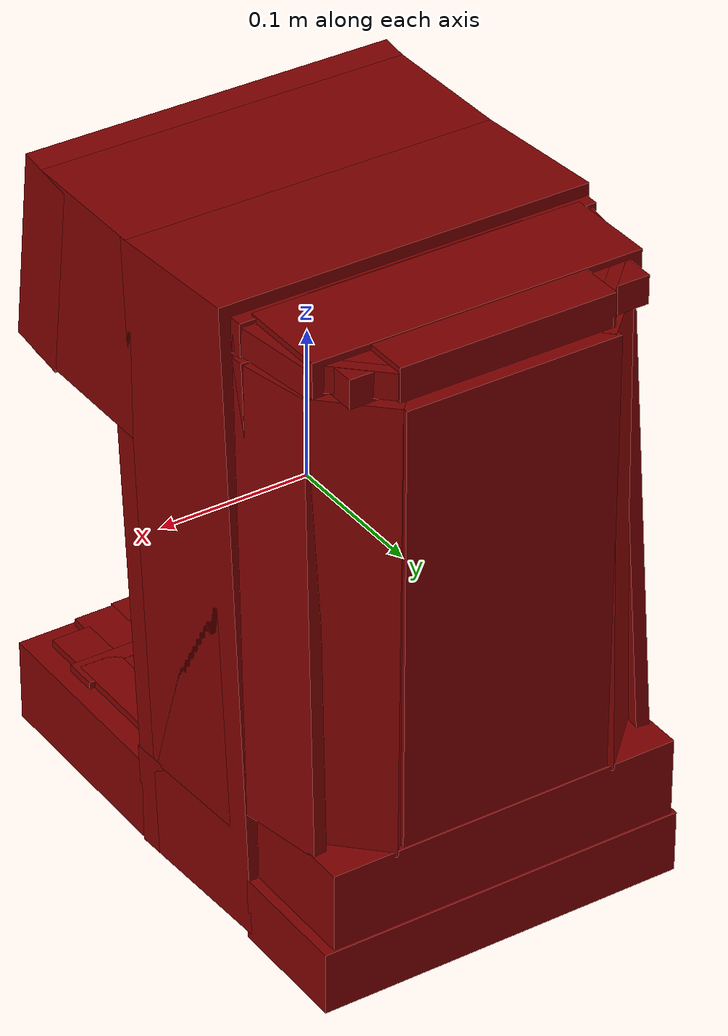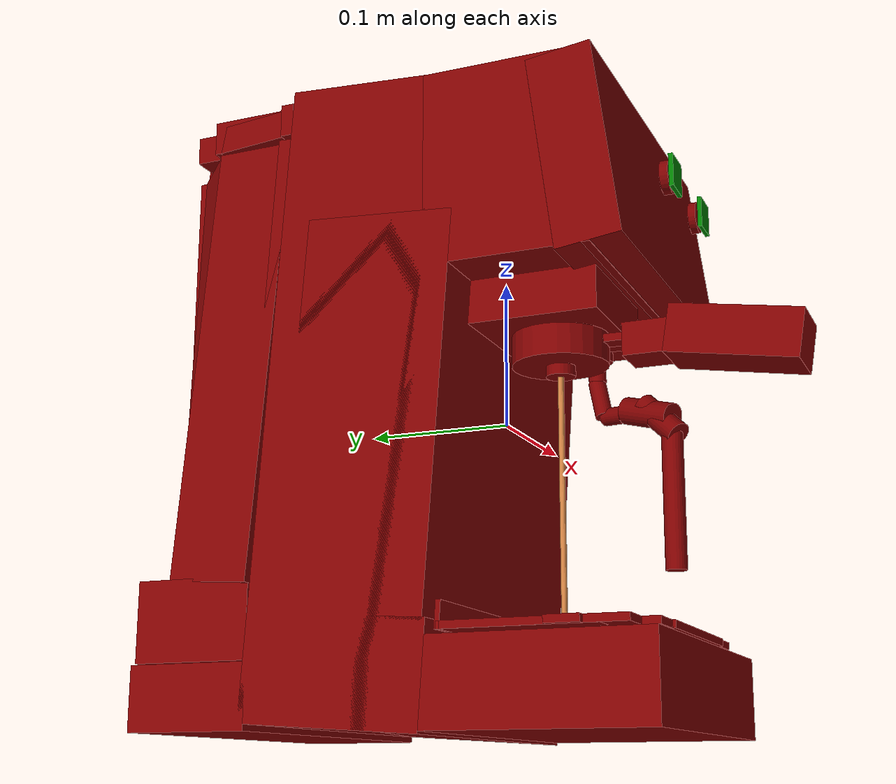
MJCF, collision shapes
<?xml version='1.0' encoding='UTF-8'?>
<mujoco model="model">
  <compiler angle="radian"/>
  <asset>
    <mesh file="visuals/Body001.obj" name="Body001_vis"/>
    <mesh file="visuals/Button001.obj" name="Button001_vis"/>
    <mesh file="visuals/Button002.obj" name="Button002_vis"/>
    <mesh file="visuals/Container001_Clear.obj" name="Container001_Clear_vis"/>
    <mesh file="visuals/Lever001.obj" name="Lever001_vis"/>
    <mesh file="visuals/Lever002.obj" name="Lever002_vis"/>
    <mesh file="visuals/Lid001.obj" name="Lid001_vis"/>
    <mesh file="visuals/Lid002_Clear.obj" name="Lid002_Clear_vis"/>
    <texture file="visuals/T_BC001.png" name="Body001_material" type="2d"/>
    <material name="Body001_material" rgba="1 1 1 1.0" texture="Body001_material" shininess="0.4472135901451111" specular="0.3103448502657381"/>
    <texture file="visuals/T_BC001.png" name="Button001_material" type="2d"/>
    <material name="Button001_material" rgba="1 1 1 1.0" texture="Button001_material" shininess="0.4472135901451111" specular="0.3103448502657381"/>
    <texture file="visuals/T_BC001.png" name="Button002_material" type="2d"/>
    <material name="Button002_material" rgba="1 1 1 1.0" texture="Button002_material" shininess="0.4472135901451111" specular="0.3103448502657381"/>
    <texture file="visuals/T_BC001.png" name="Container001_Clear_material" type="2d"/>
    <material name="Container001_Clear_material" rgba="1 1 1 0.13247865438461304" texture="Container001_Clear_material" shininess="0.4472135901451111" specular="0.3103448502657381"/>
    <texture file="visuals/T_BC001.png" name="Lid002_Clear_material" type="2d"/>
    <material name="Lid002_Clear_material" rgba="1 1 1 0.13247865438461304" texture="Lid002_Clear_material" shininess="0.4472135901451111" specular="0.3103448502657381"/>
    <texture file="visuals/T_BC001.png" name="Lever001_material" type="2d"/>
    <material name="Lever001_material" rgba="1 1 1 1.0" texture="Lever001_material" shininess="0.4472135901451111" specular="0.3103448502657381"/>
    <texture file="visuals/T_BC001.png" name="Lever002_material" type="2d"/>
    <material name="Lever002_material" rgba="1 1 1 1.0" texture="Lever002_material" shininess="0.4472135901451111" specular="0.3103448502657381"/>
    <texture file="visuals/T_BC001.png" name="Lid001_material" type="2d"/>
    <material name="Lid001_material" rgba="1 1 1 1.0" texture="Lid001_material" shininess="0.4472135901451111" specular="0.3103448502657381"/>
  </asset>
  <default>
    <default class="visual">
      <geom conaffinity="0" contype="0" group="1" type="mesh"/>
    </default>
    <default class="collision">
      <geom group="0" rgba="0.5 0 0 0.5"/>
    </default>
    <default class="spawn">
      <geom group="0" rgba="1 1 1 0.5" contype="0" conaffinity="0"/>
      <site group="0" rgba="1 1 1 0.5"/>
    </default>
    <default class="region">
      <geom group="1" conaffinity="0" contype="0" rgba="0 1 0 0"/>
    </default>
  </default>
  <worldbody>
    <body>
      <body name="object">
        <geom class="collision" type="box" pos="-0.037887778133153915 -0.13149195909500122 0.14521107077598572" size="0.011056236922740936 0.011056238785386086 0.0014997016405686736" quat="0.7071067094802856 0.7071068286895752 0.0 0.0" name="start_button_1" rgba="0.0 0.5 0 0.5"/>
        <geom class="collision" type="box" pos="0.03765728324651718 -0.1315450668334961 0.14554733037948608" size="0.010777225717902184 0.010777226649224758 0.001362221664749086" quat="0.7071067094802856 0.7071068286895752 0.0 0.0" name="start_button_2" rgba="0.0 0.5 0 0.5"/>
        <site type="cylinder" rgba="0.8 0.5 0.25 1" size="0.001991123892366886 0.09143907576799393" pos="-0.03728548437356949 -0.051361002027988434 -0.06694786250591278" name="coffee_liquid"/>
        <site rgba="0 0 0 0" size="0.009999999776482582 0.009999999776482582" pos="-0.03728548437356949 -0.051361002027988434 -0.1354365348815918" name="receptacle_place_site"/>
        <geom mesh="Body001_vis" type="mesh" solimp="0.998 0.998 0.001" solref="0.001 1" density="100" friction="0.95 0.3 0.1" class="visual" material="Body001_material"/>
        <geom class="collision" type="box" pos="0.0005879322998225689 0.16713333129882812 -0.1845313310623169" size="0.12188521027565002 0.04132832959294319 0.020840879529714584" quat="1.0 0.0 0.0 0.0"/>
        <geom class="collision" type="box" pos="0.0005879322998225689 -0.061979882419109344 -0.17946156859397888" size="0.12188521027565002 0.0717216357588768 0.02756747230887413" quat="1.0 0.0 0.0 0.0"/>
        <geom class="collision" type="box" pos="0.0005879322998225689 -0.04462757706642151 0.1394951045513153" size="0.12188521027565002 0.054369330406188965 0.06431352347135544" quat="1.0 0.0 0.0 0.0"/>
        <geom class="collision" type="box" pos="0.0005879322998225689 -0.08910470455884933 0.1394951045513153" size="0.12188521027565002 0.02129788137972355 0.06431352347135544" quat="0.9977379441261292 -0.06722323596477509 1.492656018030309e-17 4.508696539859629e-25"/>
        <geom class="collision" type="box" pos="-0.037271272391080856 -0.040505655109882355 0.062302615493535995" size="0.04665796831250191 0.05024740844964981 0.015589541755616665" quat="1.0 0.0 0.0 0.0"/>
        <geom class="collision" type="box" pos="0.0005879322998225689 0.06555070728063583 0.0012318050721660256" size="0.12188521027565002 0.051172152161598206 0.20599928498268127" quat="0.9994761943817139 0.03236301243305206 -8.963143829167396e-18 6.466591713618984e-20"/>
        <geom class="collision" type="box" pos="0.0005879322998225689 0.05872242897748947 -0.1721765100955963" size="0.12188521027565002 0.05086646229028702 0.033395931124687195" quat="0.9994761943817139 0.03236301243305206 -8.963143829167396e-18 6.466591713618984e-20"/>
        <geom class="collision" type="box" pos="0.0005879322998225689 0.0489005409181118 -0.0131535604596138" size="0.12188521027565002 0.05004939064383507 0.1273946911096573" quat="0.999369740486145 0.03549849987030029 -9.659572002294167e-18 5.90912949566021e-20"/>
        <body name="Button001">
          <joint axis="0.0 1.0 0.0" pos="-0.03684584051370621 -0.12909454107284546 0.14541707932949066" limited="true" name="Button001_joint" range="0.0 0.003" type="slide" damping="1" frictionloss="1" armature=".01" stiffness="0.05"/>
          <geom mesh="Button001_vis" type="mesh" solimp="0.998 0.998 0.001" solref="0.001 1" density="100" friction="0.95 0.3 0.1" class="visual" material="Button001_material"/>
          <geom class="collision" type="cylinder" pos="-0.03707227483391762 -0.12606224417686462 0.1450919508934021" size="0.011056236922740936 0.0028418099973350763" quat="0.7071067094802856 0.7071068286895752 0.0 0.0"/>
        </body>
        <body name="Button002">
          <joint axis="0.0 1.0 0.0" pos="0.037382572889328 -0.12909454107284546 0.14541707932949066" limited="true" name="Button002_joint" range="0.0 0.003" type="slide" damping="1" frictionloss="1" armature=".01" stiffness="0.05"/>
          <geom mesh="Button002_vis" type="mesh" solimp="0.998 0.998 0.001" solref="0.001 1" density="100" friction="0.95 0.3 0.1" class="visual" material="Button002_material"/>
          <geom class="collision" type="cylinder" pos="0.037992894649505615 -0.1255909502506256 0.14551380276679993" size="0.010777225717902184 0.002586835063993931" quat="0.7071067094802856 0.7071068286895752 0.0 0.0"/>
        </body>
        <body name="Container001_Clear">
          <joint axis="0.0 2.0663208033511182e-07 1.0" pos="-1.8635765286489914e-07 0.15773698687553406 0.010160783305764198" limited="true" name="Container001_Clear_joint" range="0.0 0.05" type="slide" damping="1" frictionloss="1" armature=".01" stiffness="0.05"/>
          <geom mesh="Container001_Clear_vis" type="mesh" solimp="0.998 0.998 0.001" solref="0.001 1" density="100" friction="0.95 0.3 0.1" class="visual" material="Container001_Clear_material"/>
          <geom class="collision" type="box" pos="-0.0006004249444231391 0.1678837239742279 -0.1365441083908081" size="0.11710385978221893 0.039931368082761765 0.026088230311870575" quat="1.0 0.0 0.0 0.0"/>
          <geom class="collision" type="box" pos="-0.0006004249444231391 0.12045846879482269 0.0331772118806839" size="0.11710385978221893 0.00440641725435853 0.14647434651851654" quat="0.9995599985122681 0.02966165915131569 -6.586211801265138e-18 2.6615360824919416e-25"/>
          <geom class="collision" type="box" pos="-0.0013509514974430203 0.1983240842819214 0.03387085348367691" size="0.07032100111246109 0.007846659980714321 0.14723441004753113" quat="1.0 0.0 0.0 0.0"/>
          <geom class="collision" type="box" pos="-0.08808834850788116 0.1843516230583191 0.03374398872256279" size="0.02727334201335907 0.004406421445310116 0.1474907100200653" quat="0.9258682131767273 0.01082668174058199 0.004416247364133596 0.37766557931900024"/>
          <geom class="collision" type="box" pos="-0.11131235957145691 0.14657989144325256 0.032974448055028915" size="0.029937107115983963 0.004406421445310116 0.14673496782779694" quat="0.7486696839332581 0.033221106976270676 -0.013875730335712433 0.6619648933410645"/>
          <geom class="collision" type="box" pos="0.11180669069290161 0.14656499028205872 0.0331929549574852" size="0.029937107115983963 0.004406421445310116 0.14695404469966888" quat="0.03322112187743187 -0.7486696839332581 0.6619648933410645 0.013875721953809261"/>
          <geom class="collision" type="box" pos="0.08858475089073181 0.18434855341911316 0.033928412944078445" size="0.02727334201335907 0.0044064209796488285 0.14767517149448395" quat="0.010826962999999523 -0.9258682131767273 0.37766557931900024 -0.004416361451148987"/>
          <body name="Lid002_Clear">
            <joint axis="0.0 2.0663208033511182e-07 1.0" pos="-3.818428240265348e-09 0.15321490168571472 0.19394347071647644" limited="true" name="Lid002_Clear_joint" range="0.0 0.05" type="slide" damping="1" frictionloss="1" armature=".01" stiffness="0.05"/>
            <geom mesh="Lid002_Clear_vis" type="mesh" solimp="0.998 0.998 0.001" solref="0.001 1" density="100" friction="0.95 0.3 0.1" class="visual" material="Lid002_Clear_material"/>
            <geom class="collision" type="box" pos="0.08627170324325562 0.17725059390068054 0.1930568516254425" size="0.02727334201335907 0.004406421445310116 0.008453822694718838" quat="0.010826962999999523 -0.9258682131767273 0.37766557931900024 -0.004416361451148987"/>
            <geom class="collision" type="box" pos="0.10850599408149719 0.13693499565124512 0.1928064227104187" size="0.02993711829185486 0.004406421445310116 0.00896898191422224" quat="0.007883365266025066 -0.7493649125099182 0.662055492401123 -0.008518772199749947"/>
            <geom class="collision" type="box" pos="-0.10801844298839569 0.1369352638721466 0.19229581952095032" size="0.02993711829185486 0.004406421910971403 0.00947972945868969" quat="0.7493649125099182 0.007883323356509209 0.008518734946846962 0.662055492401123"/>
            <geom class="collision" type="box" pos="-0.08578541874885559 0.1772640347480774 0.19225364923477173" size="0.02727334201335907 0.004406421445310116 0.009257255122065544" quat="0.9258682131767273 0.01082668174058199 0.004416247364133596 0.37766557931900024"/>
            <geom class="collision" type="box" pos="-0.0013509514974430203 0.1543620228767395 0.19386667013168335" size="0.07032100111246109 0.04513401910662651 0.011051655746996403" quat="1.0 0.0 0.0 0.0"/>
            <geom class="collision" type="box" pos="-0.0006004249444231391 0.11092163622379303 0.19351190328598022" size="0.11710331588983536 0.004419524688273668 0.010941595770418644" quat="1.0 0.0 0.0 0.0"/>
            <geom class="collision" type="box" pos="-0.001386823132634163 0.14111310243606567 0.19429677724838257" size="0.10761291533708572 0.030117934569716454 0.011411004699766636" quat="1.0 0.0 0.0 0.0"/>
            <geom class="collision" type="box" pos="-0.0028202307876199484 0.16881805658340454 0.19207772612571716" size="0.097657710313797 0.021215692162513733 0.009356423281133175" quat="1.0 0.0 0.0 0.0"/>
          </body>
        </body>
        <body name="Lever001">
          <joint axis="0.0 0.0 -1.0" pos="-0.0373595766723156 -0.051613617688417435 0.04193174093961716" limited="true" name="Lever001_joint" range="0.0 1.5707963267948966" type="hinge" damping="1" frictionloss="1" armature=".01" stiffness="0.005"/>
          <geom mesh="Lever001_vis" type="mesh" solimp="0.998 0.998 0.001" solref="0.001 1" density="100" friction="0.95 0.3 0.1" class="visual" material="Lever001_material"/>
          <geom class="collision" type="cylinder" pos="-0.03771108016371727 -0.05158468335866928 0.03559831902384758" size="0.03163303807377815 0.010009441524744034" quat="1.0 0.0 0.0 0.0"/>
          <geom class="collision" type="cylinder" pos="-0.03771108016371727 -0.05158468335866928 0.024116763845086098" size="0.009565931744873524 0.005504253786057234" quat="1.0 0.0 0.0 0.0"/>
          <geom class="collision" type="box" pos="-0.0374380387365818 -0.11334039270877838 0.03461790457367897" size="0.01535114087164402 0.01625707373023033 0.010815201327204704" quat="1.0 0.0 0.0 0.0"/>
          <geom class="collision" type="box" pos="-0.038012340664863586 -0.16829073429107666 0.030449291691184044" size="0.02071131020784378 0.04210885986685753 0.015622341074049473" quat="0.9968188405036926 0.07970042526721954 -1.7697072601873898e-17 -4.9913915544715694e-24"/>
          <geom class="collision" type="box" pos="-0.037725191563367844 -0.09907202422618866 0.03962697833776474" size="0.006449430715292692 0.017361201345920563 0.00254416442476213" quat="1.0 0.0 0.0 0.0"/>
        </body>
        <body name="Lever002">
          <joint axis="0.0 0.0 1.0" pos="0.07175585627555847 -0.042444124817848206 0.07876136153936386" limited="true" name="Lever002_joint" range="0.0 1.0471975511965976" type="hinge" damping="1" frictionloss="1" armature=".01" stiffness="0.005"/>
          <geom mesh="Lever002_vis" type="mesh" solimp="0.998 0.998 0.001" solref="0.001 1" density="100" friction="0.95 0.3 0.1" class="visual" material="Lever002_material"/>
          <geom class="collision" type="cylinder" pos="0.04809734597802162 -0.08633572608232498 0.011362612247467041" size="0.009586065076291561 0.020895101130008698" quat="0.7055443525314331 -0.3590179681777954 0.47674089670181274 0.38214048743247986"/>
          <geom class="collision" type="cylinder" pos="0.043764036148786545 -0.09538999944925308 0.005160179920494556" size="0.008795724250376225 0.019172366708517075" quat="0.795781135559082 -0.24646706879138947 0.3260408639907837 0.44685983657836914"/>
          <geom class="collision" type="cylinder" pos="0.04025452956557274 -0.10367809981107712 -0.04990759491920471" size="0.0073611135594546795 0.04914182424545288" quat="1.0 0.0 0.0 0.0"/>
          <geom class="collision" type="cylinder" pos="0.07017475366592407 -0.044739365577697754 0.0311233289539814" size="0.0062906574457883835 0.013869598507881165" quat="0.9672258496284485 -0.13102330267429352 0.05762132629752159 -0.2097303867340088"/>
          <geom class="collision" type="cylinder" pos="0.07223625481128693 -0.042063429951667786 0.05834575742483139" size="0.0062906574457883835 0.013869593851268291" quat="0.9707667231559753 -0.0006475317059084773 -0.0021047110203653574 -0.24001479148864746"/>
          <geom class="collision" type="cylinder" pos="0.06368972361087799 -0.0606224499642849 0.01673007197678089" size="0.0062906574457883835 0.01386959757655859" quat="0.7152868509292603 -0.6563178896903992 0.16059985756874084 -0.1783793866634369"/>
          <geom class="collision" type="cylinder" pos="0.07223625481128693 -0.042552318423986435 0.06725999712944031" size="0.010822193697094917 0.007798452395945787" quat="0.9707667231559753 -0.0006475315312854946 -0.00210471055470407 -0.24001479148864746"/>
        </body>
        <body name="Lid001">
          <joint axis="0.0 0.0 1.0" pos="-0.0001155270729213953 -0.06192869320511818 -0.1415630280971527" limited="true" name="Lid001_joint" range="0.0 0.03" type="slide" damping="1" frictionloss="1" armature=".01" stiffness="0.05"/>
          <geom mesh="Lid001_vis" type="mesh" solimp="0.998 0.998 0.001" solref="0.001 1" density="100" friction="0.95 0.3 0.1" class="visual" material="Lid001_material"/>
          <geom class="collision" type="box" pos="-3.725290298461914e-09 -0.061901018023490906 -0.14560377597808838" size="0.060780346393585205 0.06596993654966354 0.0024714807514101267" quat="1.0 0.0 0.0 0.0"/>
          <geom class="collision" type="box" pos="-0.07312719523906708 -0.060919202864170074 -0.14560377597808838" size="0.01309221237897873 0.06498811393976212 0.0024714807514101267" quat="1.0 0.0 0.0 0.0"/>
          <geom class="collision" type="box" pos="-0.0005477853119373322 -0.07540486007928848 -0.14560377597808838" size="0.1144583448767662 0.011027284897863865 0.0024714807514101267" quat="1.0 0.0 0.0 0.0"/>
          <geom class="collision" type="box" pos="-0.09634935855865479 -0.05606040358543396 -0.14560377597808838" size="0.01309221237897873 0.05834566429257393 0.0024714807514101267" quat="1.0 0.0 0.0 0.0"/>
          <geom class="collision" type="box" pos="-0.09818145632743835 -0.04577120766043663 -0.14560377597808838" size="0.010848063044250011 0.05068168044090271 0.0024714807514101267" quat="1.0 0.0 0.0 0.0"/>
          <geom class="collision" type="box" pos="0.0005621240707114339 0.003520637284964323 -0.13927441835403442" size="0.10959164053201675 0.0016509233973920345 0.008795347064733505" quat="0.999474287033081 0.03242072835564613 -7.198846991930593e-18 -5.269354977465698e-24"/>
          <geom class="collision" type="box" pos="0.09709402918815613 -0.05606040358543396 -0.14560377597808838" size="0.01309221237897873 0.05834566429257393 0.0024714807514101267" quat="1.0 0.0 0.0 0.0"/>
          <geom class="collision" type="box" pos="0.07417574524879456 -0.060919202864170074 -0.14560377597808838" size="0.013399497605860233 0.06498811393976212 0.0024714807514101267" quat="1.0 0.0 0.0 0.0"/>
          <geom class="collision" type="box" pos="-3.725290298461914e-09 -0.061901018023490906 -0.14560377597808838" size="0.060780346393585205 0.06596993654966354 0.0024714807514101267" quat="1.0 0.0 0.0 0.0"/>
        </body>
        <geom class="region" name="reg_main" type="box" pos="1.862645149230957e-09 0.036915212869644165 0.0" size="0.12223701179027557 0.17060095071792603 0.2039770483970642"/>
      </body>
    </body>
  </worldbody>
  <actuator>
    <motor name="Button001_joint_actuator" joint="Button001_joint" gear="0.5"/>
    <motor name="Button002_joint_actuator" joint="Button002_joint" gear="0.5"/>
    <motor name="Container001_Clear_joint_actuator" joint="Container001_Clear_joint" gear="60"/>
    <motor name="Lever001_joint_actuator" joint="Lever001_joint" gear="10"/>
    <motor name="Lever002_joint_actuator" joint="Lever002_joint" gear="10"/>
    <motor name="Lid001_joint_actuator" joint="Lid001_joint" gear="10"/>
    <motor name="Lid002_Clear_joint_actuator" joint="Lid002_Clear_joint" gear="20"/>
  </actuator>
</mujoco>
